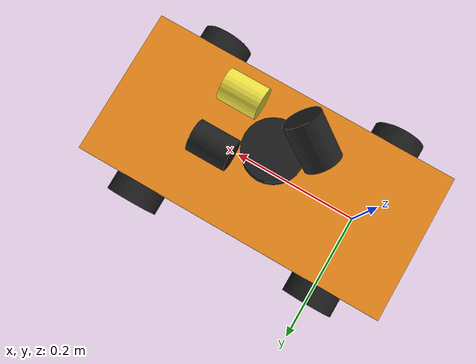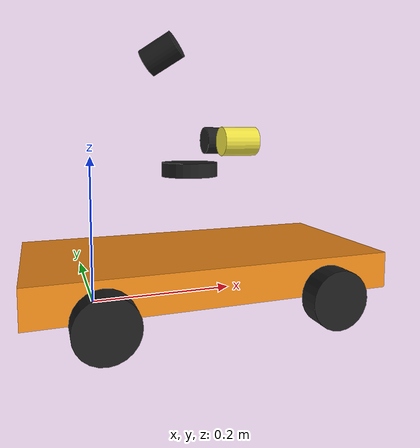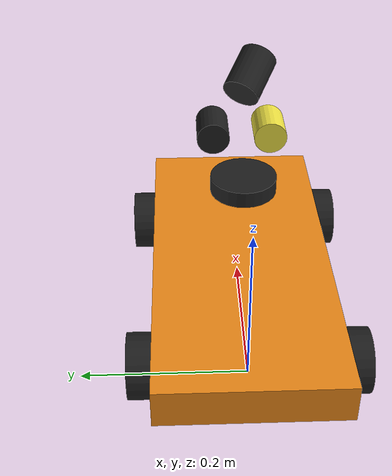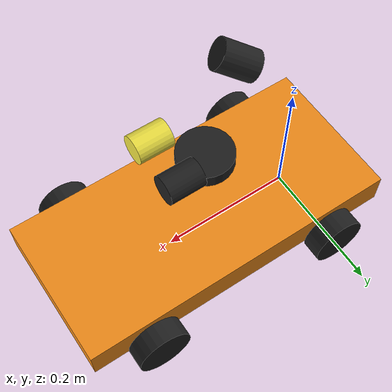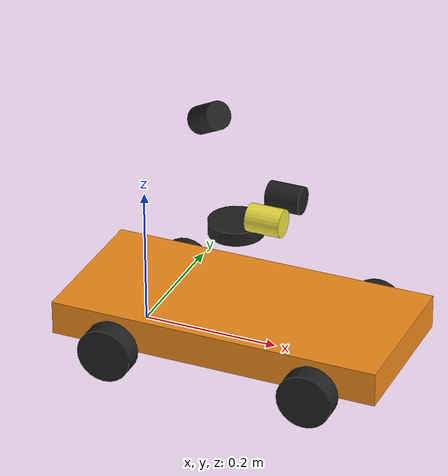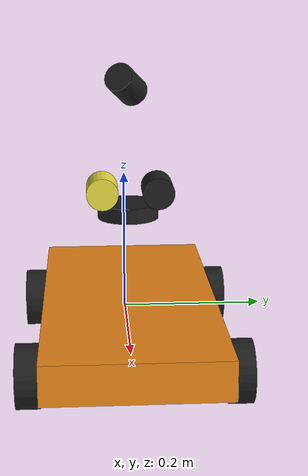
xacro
<?xml version="1.0"?>

<robot name="my_robot" xmlns:xacro="http://www.ros.org/wiki/xacro">

  <xacro:property name="wheel_width" value="0.03" />
  <xacro:property name="wheel_radius" value="0.04" />
  <xacro:property name="wheel_mass" value="0.056" />

  <xacro:property name="wheel_chassis_bias" value="${wheel_width/2}" />

  <!-- Just to be visible =) -->
  <xacro:property name="lidar_height" value="0.02"/>
  <xacro:property name="lidar_radius" value="0.04"/>
  <!-- Taken from physical parameters (wr8_software/launch/base/lidar.launch) -->
  <xacro:property name="base_link_2_laser_xyz" value="0.14 0 0.14" />

  <xacro:property name="chassis_mass" value="3.7" />
  <xacro:property name="chassis_length" value="0.485" />
  <xacro:property name="chassis_width" value="0.227" />
  <xacro:property name="chassis_height" value="0.05" />

  <xacro:property name="wheelbase" value="0.3" />
  <xacro:property name="half_wheelbase" value="${wheelbase/2}" />

  <xacro:property name="half_track_width" value="${(chassis_width/2 + wheel_chassis_bias)}" />

  <xacro:property name="lidar_mass" value="0.1" />

  <!-- https://github.com/jbpassot/ackermann_vehicle/blob/master/ackermann_vehicle_description/urdf/em_3905.urdf.xacro -->
  <xacro:property name="degrees_90" value="${pi/2}"/>
  <xacro:property name="degrees_45" value="${pi/4}"/>

  <!-- ~0.5 rad -->
  <xacro:property name="degrees_30" value="${pi/6}"/>
  <xacro:property name="mid_wheel_turn_limit" value="${degrees_30}"/>
  <xacro:property name="wheel_turn_limit" value="${degrees_45}"/>

  <xacro:property name="wheel_friction" value="1.75" />

  <!-- Stereo camera properties -->
  <xacro:property name="camera_height" value="0.05"/>
  <xacro:property name="camera_radius" value="0.02"/>
  <xacro:property name="camera_mass" value="0.05"/>
  <xacro:property name="stereo_base_link_lcam_xyz" value="0.05 0.035 0.18"/>
  <xacro:property name="stereo_base_link_rcam_xyz" value="0.05 -0.035 0.18"/>

  <xacro:arg name="pub_tf" default="true" />
  <xacro:arg name="robot_name" default="" />

  <xacro:arg name="enable_stereo" default="true" />

  <!-- Gazebo plugins -->
  <gazebo>

    <!-- Simulated vehicle interface -->
    <plugin name="wr8_interface_plugin" filename="libwr8_interface_plugin.so" >
      <robotName>$(arg robot_name)</robotName>
      <pubTf>$(arg pub_tf)</pubTf>
      <tfFreq>100.0</tfFreq>
      <maxSteerRad>${mid_wheel_turn_limit}</maxSteerRad>
      <wheelbase>${wheelbase}</wheelbase>
      <wheelRadius>${wheel_radius}</wheelRadius>
      <trackWidth>${half_track_width*2}</trackWidth>
    </plugin>

    <!-- Publish current joint angles -->
    <plugin name="joint_state_publisher" filename="libgazebo_ros_joint_state_publisher.so">
        <robotNamespace>$(arg robot_name)</robotNamespace>
        <jointName>
            fl_steer_joint,
            fr_steer_joint,
            fl_speed_joint,
            fr_speed_joint,
            rl_speed_joint,
            rr_speed_joint
        </jointName>
        <updateRate>100</updateRate>
        <alwaysOn>true</alwaysOn>
    </plugin>
  </gazebo>

  <!-- INERTIAL MACROS -->
  <xacro:macro name="null_inertial">
    <inertial>
      <mass value="0.001"/>
      <inertia ixx="0.001" ixy="0" ixz="0"
               iyy="0.001" iyz="0"
               izz="0.001"/>
    </inertial>
  </xacro:macro>

  <xacro:macro name="solid_cuboid_inertial"
               params="width length height mass *origin">
    <inertial>
      <xacro:insert_block name="origin"/>
      <mass value="${mass}"/>
      <inertia ixx="${mass * (width * width + height * height) / 12}"
               ixy="0" ixz="0"
               iyy="${mass * (length * length + height * height) / 12}"
               iyz="0"
               izz="${mass * (width * width + length * length) / 12}"/>
    </inertial>
  </xacro:macro>

  <xacro:macro name="solid_cylinder_inertial"
               params="r h mass *origin">
    <inertial>
      <xacro:insert_block name="origin"/>
      <mass value="${mass}"/>
      <inertia ixx="${mass / 12 * (3 * r * r + h * h)}" ixy="0.0" ixz="0.0"
               iyy="${mass / 12 * (3 * r * r + h * h)}" iyz="0.0"
               izz="${mass / 2 * r * r}" />
    </inertial>
  </xacro:macro>
  <!-- INERTIAL MACROS END -->

  <xacro:macro name="wheel_object" params="name">
    <link name="${name}">
      <visual>
        <origin xyz="0 0 0" rpy="0 0 0" />
        <geometry>
          <cylinder length="${wheel_width}" radius="${wheel_radius}"/>
        </geometry>
      </visual>

      <collision>
        <origin xyz="0 0 0" rpy="0 0 0" />
        <geometry>
          <cylinder length="${wheel_width}" radius="${wheel_radius}"/>
        </geometry>
      </collision>

      <xacro:solid_cylinder_inertial
          r="${wheel_radius}" h="${wheel_width}"
          mass="${wheel_mass}" >
        <origin xyz="0 0 0" rpy="0 0 0" />
      </xacro:solid_cylinder_inertial>
    </link>

    <gazebo reference="${name}">
      <mu1>${wheel_friction}</mu1>
      <mu2>${wheel_friction}</mu2>
      <material>Gazebo/Black</material>
      <kp>10000000</kp>
      <kd>1</kd>
    </gazebo>
  </xacro:macro>

  <xacro:macro name="speed_wheel" params="name base_name xyz ">
    <xacro:wheel_object name="wheel_${name}" />

    <joint name="${name}_speed_joint" type="continuous">
      <parent link="${base_name}"/>
      <child link="wheel_${name}"/>
      <origin xyz="${xyz}" rpy="${pi/2} 0 0"/>
      <axis xyz="0 0 -1"/>
      <limit effort="1000.0" velocity="22.0" />
    </joint>
  </xacro:macro>

  <xacro:macro name="steer_wheel" params="name base_name xyz">
    <xacro:wheel_object name="wheel_${name}" />

    <link name="steer_${name}">
      <xacro:null_inertial/>
    </link>

    <joint name="${name}_steer_joint" type="revolute">
      <limit lower="${-wheel_turn_limit}"
             upper="${wheel_turn_limit}"
             effort="0" velocity="0"/>
      <parent link="${base_name}"/>
      <child link="steer_${name}"/>
      <origin xyz="${xyz}" rpy="0 0 0"/>
      <axis xyz="0 0 1"/>
    </joint>

    <joint name="${name}_speed_joint" type="continuous">
      <parent link="steer_${name}"/>
      <child link="wheel_${name}"/>
      <origin xyz="0 0 0" rpy="${pi/2} 0 0"/>
      <axis xyz="0 0 -1"/>
      <limit effort="1000.0" velocity="22.0" />
    </joint>

  </xacro:macro>

  <!-- base_footprint - base_link on floor -->
  <link name="base_footprint">
  </link>
  <gazebo reference="base_footprint"/>

  <link name="base_link">
  </link>
  <gazebo reference="base_link"/>

  <link name="base_center">
    <visual>
      <origin xyz="0 0 0" rpy="0 0 0" />
      <geometry>
        <box size="${chassis_length} ${chassis_width} ${chassis_height}"/>
      </geometry>
    </visual>
    <collision>
      <origin xyz="0 0 0" rpy="0 0 0" />
      <geometry>
        <box size="${chassis_length} ${chassis_width} ${chassis_height}"/>
      </geometry>
    </collision>
    <xacro:solid_cuboid_inertial
          length="${chassis_length}" width="${chassis_width}"
          height="${chassis_height}" mass="${chassis_mass}">
      <origin xyz="0 0 0" rpy="0 0 0" />
    </xacro:solid_cuboid_inertial>
  </link>
  <gazebo reference="base_center">
      <material>Gazebo/Orange</material>
  </gazebo>

  <joint name="base_footprint_2_link" type="fixed">
    <parent link="base_footprint"/>
    <child link="base_link"/>
    <!-- base_footprint - base_link on floor -->
    <origin xyz="0 0 ${wheel_radius}" rpy="0 0 0"/>
  </joint>

  <joint name="base_link_2_center" type="fixed">
    <parent link="base_link"/>
    <child link="base_center"/>
    <origin xyz="${wheelbase/2} 0 0" rpy="0 0 0"/>
  </joint>

  <xacro:speed_wheel name="rl" base_name="base_center"
                     xyz="${-half_wheelbase} ${-half_track_width} ${-chassis_height/2}" />
  <xacro:speed_wheel name="rr" base_name="base_center"
                     xyz="${-half_wheelbase} ${half_track_width} ${-chassis_height/2}" />
  <xacro:steer_wheel name="fl" base_name="base_center"
                     xyz="${half_wheelbase} ${-half_track_width} ${-chassis_height/2}" />
  <xacro:steer_wheel name="fr" base_name="base_center"
                     xyz="${half_wheelbase} ${half_track_width} ${-chassis_height/2}" />

  <!-- Setup LIDAR -->
  <link name="laser_frame">
    <xacro:solid_cylinder_inertial
        r="${lidar_radius}" h="${lidar_height}"
        mass="${lidar_mass}" >
      <origin xyz="0 0 0" rpy="0 0 0" />
    </xacro:solid_cylinder_inertial>
    <collision>
      <origin xyz="0 0 0" rpy="0 0 0" />
      <geometry>
        <cylinder length="${lidar_height}" radius="${lidar_radius}"/>
      </geometry>
    </collision>
    <visual>
      <origin xyz="0 0 0" rpy="0 0 0" />
      <geometry>
        <cylinder length="${lidar_height}" radius="${lidar_radius}"/>
      </geometry>
    </visual>
  </link>

  <joint name="laser_joint" type="fixed">
    <child link="laser_frame" />
    <parent link="base_link" />
    <origin xyz="${base_link_2_laser_xyz}" />
  </joint>

  <gazebo reference="laser_frame">
    <material>Gazebo/Black</material>

    <sensor type="ray" name="head_hokuyo_sensor">
      <visualize>true</visualize>
      <update_rate>7.5</update_rate>
      <ray>
        <scan>
          <horizontal>
            <samples>360</samples>
            <resolution>1</resolution>
            <min_angle>${-pi}</min_angle>
            <max_angle>${pi}</max_angle>
          </horizontal>
        </scan>
        <range>
          <min>0.15</min>
          <max>10.0</max>
          <resolution>0.01</resolution>
        </range>
        <noise>
          <type>gaussian</type>
          <mean>0.0</mean>
          <stddev>0.01</stddev>
        </noise>
      </ray>
      <plugin name="gazebo_ros_head_hokuyo_controller" filename="libgazebo_ros_laser.so">
        <topicName>$(arg robot_name)/scan</topicName>
        <frameName>laser_frame</frameName>
      </plugin>
    </sensor>
  </gazebo>

  <xacro:if value="$(arg enable_stereo)">
    <!-- Camera link -->
    <xacro:macro name="camera_link" params="name">
      <link name="${name}_frame">
        <xacro:solid_cylinder_inertial
            r="${camera_radius}" h="${camera_height}"
            mass="${camera_mass}" >
          <origin xyz="0 0 0" rpy="0 ${degrees_90} 0" />
        </xacro:solid_cylinder_inertial>
        <collision>
          <origin xyz="0 0 0" rpy="0 ${degrees_90} 0" />
          <geometry>
            <cylinder length="${camera_height}" radius="${camera_radius}"/>
          </geometry>
        </collision>
        <visual>
          <origin xyz="0 0 0" rpy="0 ${degrees_90} 0" />
          <geometry>
            <cylinder length="${camera_height}" radius="${camera_radius}"/>
          </geometry>
        </visual>
      </link>
    </xacro:macro>

    <!-- Single camera macro -->
    <xacro:macro name="single_camera" params="name xyz rpy fov">
      <xacro:camera_link name="${name}" />

      <joint name="${name}_joint" type="fixed">
        <child link="${name}_frame" />
        <parent link="base_center" />
        <origin xyz="${xyz}" rpy="${rpy}" />
      </joint>

      <link name="${name}_optical_frame"/>

      <joint name="${name}_optical_frame_joint" type="fixed">
        <origin xyz="0 0 0" rpy="-${degrees_90} 0.0 -${degrees_90}" />
        <parent link="${name}_frame" />
        <child link="${name}_optical_frame"/>
      </joint>

      <gazebo reference="${name}_frame">
        <material>Gazebo/Black</material>

        <sensor type="camera" name="${name}">
          <update_rate>30.0</update_rate>
          <camera name="${name}">
            <horizontal_fov>${fov}</horizontal_fov>
            <image>
              <width>800</width>
              <height>600</height>
              <format>R8G8B8</format>
            </image>
            <clip>
              <near>0.02</near>
              <far>300</far>
            </clip>
            <noise>
              <type>gaussian</type>
              <mean>0.0</mean>
              <stddev>0.001</stddev>
            </noise>
          </camera>
          <plugin name="${name}_controller" filename="libgazebo_ros_camera.so">
            <alwaysOn>true</alwaysOn>
            <updateRate>30.0</updateRate>
            <cameraName>$(arg robot_name)/${name}</cameraName>
            <imageTopicName>image_raw</imageTopicName>
            <cameraInfoTopicName>camera_info</cameraInfoTopicName>
            <frameName>${name}_optical_frame</frameName>
            <hackBaseline>0.07</hackBaseline>
            <distortionK1>0.0</distortionK1>
            <distortionK2>0.0</distortionK2>
            <distortionK3>0.0</distortionK3>
            <distortionT1>0.0</distortionT1>
            <distortionT2>0.0</distortionT2>
          </plugin>
        </sensor>
      </gazebo>
    </xacro:macro>

    <!-- Stereo camera macro -->
    <xacro:macro name="stereo_camera" params="name fov">
      <xacro:camera_link name="${name}_left" />
      <xacro:camera_link name="${name}_right" />

      <joint name="${name}_left_joint" type="fixed">
        <child link="${name}_left_frame" />
        <parent link="base_center" />
        <origin xyz="${stereo_base_link_lcam_xyz}" rpy="0 0 0" />
      </joint>

      <joint name="${name}_right_joint" type="fixed">
        <child link="${name}_right_frame" />
        <parent link="base_center" />
        <origin xyz="${stereo_base_link_rcam_xyz}" rpy="0 0 0" />
      </joint>

      <link name="${name}_optical_frame"/>

      <joint name="${name}_optical_frame_joint" type="fixed">
        <origin xyz="0 0 0" rpy="-${degrees_90} 0.0 -${degrees_90}" />
        <parent link="${name}_left_frame" />
        <child link="${name}_optical_frame"/>
      </joint>

      <gazebo reference="${name}_left_frame">
        <material>Gazebo/Black</material>

        <sensor type="multicamera" name="${name}">
          <update_rate>30.0</update_rate>
          <camera name="left">
            <horizontal_fov>${fov}</horizontal_fov>
            <image>
              <width>800</width>
              <height>600</height>
              <format>R8G8B8</format>
            </image>
            <clip>
              <near>0.02</near>
              <far>300</far>
            </clip>
            <noise>
              <type>gaussian</type>
              <mean>0.0</mean>
              <stddev>0.007</stddev>
            </noise>
          </camera>
          <camera name="right">
            <pose>0 -0.07 0 0 0 0</pose>
            <horizontal_fov>${fov}</horizontal_fov>
            <image>
              <width>800</width>
              <height>600</height>
              <format>R8G8B8</format>
            </image>
            <clip>
              <near>0.02</near>
              <far>300</far>
            </clip>
            <noise>
              <type>gaussian</type>
              <mean>0.0</mean>
              <stddev>0.007</stddev>
            </noise>
          </camera>
          <plugin name="${name}_controller" filename="libgazebo_ros_multicamera.so">
            <alwaysOn>true</alwaysOn>
            <updateRate>30.0</updateRate>
            <cameraName>$(arg robot_name)/${name}</cameraName>
            <imageTopicName>image_raw</imageTopicName>
            <cameraInfoTopicName>camera_info</cameraInfoTopicName>
            <frameName>${name}_optical_frame</frameName>
            <hackBaseline>0.07</hackBaseline>
            <distortionK1>0.0</distortionK1>
            <distortionK2>0.0</distortionK2>
            <distortionK3>0.0</distortionK3>
            <distortionT1>0.0</distortionT1>
            <distortionT2>0.0</distortionT2>
          </plugin>
        </sensor>
      </gazebo>
    </xacro:macro>

    <xacro:stereo_camera name="stereo_camera" fov="1.3962634" />
    <xacro:single_camera name="signs_camera" xyz="-0.05 0 0.3" rpy="0 -${degrees_30} -${degrees_30}" fov="1.3962634" />
  </xacro:if>

</robot>
